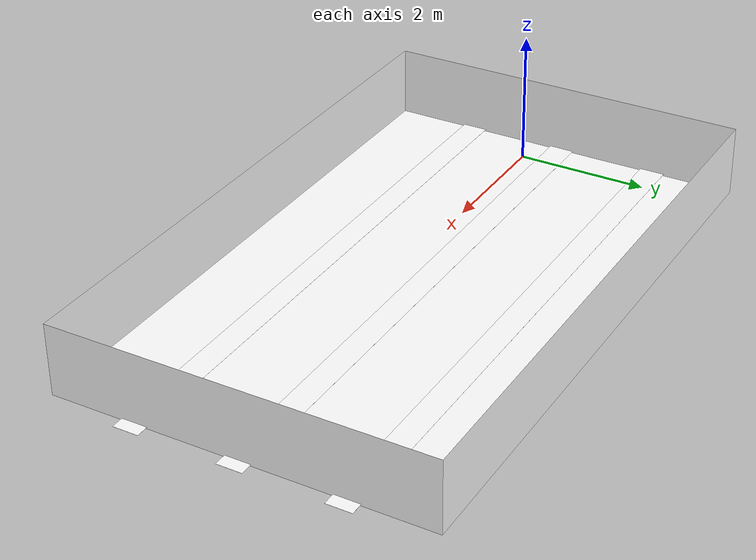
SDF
<sdf version="1.6">
 <world name="bluerov2_pool_sim">
  <magnetic_field>1.99873e-5 2.05993e-5 4.9839e-6</magnetic_field>
  <spherical_coordinates>
   <surface_model>EARTH_WGS84</surface_model>
   <latitude_deg>42.2154</latitude_deg>
   <longitude_deg>-71.0618</longitude_deg>
   <elevation>10.0</elevation>
   <heading_deg>0</heading_deg>
  </spherical_coordinates>
  <plugin filename="gz-sim-physics-system" name="gz::sim::systems::Physics"/>
  <plugin filename="gz-sim-user-commands-system" name="gz::sim::systems::UserCommands"/>
  <plugin filename="gz-sim-scene-broadcaster-system" name="gz::sim::systems::SceneBroadcaster"/>
  <plugin filename="gz-sim-sensors-system" name="gz::sim::v8::systems::Sensors">
   <render_engine>ogre2</render_engine>
  </plugin>
  <plugin filename="libgz-sim-imu-system.so" name="gz::sim::systems::Imu"/>
  <plugin filename="libgz-sim-magnetometer-system.so" name="gz::sim::systems::Magnetometer"/>
  <plugin filename="PressureSensorSystem" name="custom::PressureSensorSystem"/>
  <plugin filename="gz-sim-buoyancy-system" name="gz::sim::systems::Buoyancy">
   <graded_buoyancy>
    <default_density>1000</default_density>
    <density_change><above_depth>0</above_depth><density>1</density></density_change>
   </graded_buoyancy>
   <enable>rov1</enable>
   <enable>rov2</enable>
  </plugin>
  <include><uri>https://fuel.gazebosim.org/1.0/OpenRobotics/models/Sun</uri></include>
  <include><uri>model://pool_map</uri><pose>15 0 -0.3 0 0 0</pose></include>
 </world>
</sdf>

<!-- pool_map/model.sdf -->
<sdf version="1.8">
  <model name="pool">
    <static>true</static>
    <link name="testlink">
      <visual name="Cube">
        <cast_shadows>true</cast_shadows>
        <geometry>
          <mesh>
            <uri>model.dae</uri>
            <submesh>
              <name>Cube</name>
            </submesh>
          </mesh>
        </geometry>
        <material>
          <diffuse>1.0 1.0 1.0 1.0</diffuse>
          <specular>0.0 0.0 0.0 1.0</specular>
          <pbr>
            <metal>
              <albedo_map>blenderkit.jpg</albedo_map>
              <roughness>0.9</roughness>
              <metalness>0.01</metalness>
            </metal>
          </pbr>
        </material>
      </visual>

      <visual name='lane0'>
        <pose>-12 1.5 -0.37 0 0 0</pose>
        <cast_shadows>true</cast_shadows>
        <geometry>
          <box>
          <size>10 0.4 0.001</size>
          </box>
        </geometry>
        <material>
          <ambient>1 1 1 1</ambient>
          <diffuse>1 1 1 1</diffuse>
          <specular>0.1 0.1 0.1 1</specular>
          <pbr>
            <metal>
              <albedo_map>Black.png</albedo_map>
              <normal_map>Black.png</normal_map>
              <roughness>0.9</roughness>
              <metalness>0.01</metalness>
            </metal>
          </pbr>
        </material>
      </visual>

      <visual name='lane1'>
        <pose>-12 -0.1 -0.37 0 0 0</pose>
        <cast_shadows>true</cast_shadows>
        <geometry>
          <box>
          <size>10 0.4 0.001</size>
          </box>
        </geometry>
        <material>
          <ambient>1 1 1 1</ambient>
          <diffuse>1 1 1 1</diffuse>
          <specular>0.1 0.1 0.1 1</specular>
          <pbr>
            <metal>
              <albedo_map>Black.png</albedo_map>
              <normal_map>Black.png</normal_map>
              <roughness>0.9</roughness>
              <metalness>0.01</metalness>
            </metal>
          </pbr>
        </material>
      </visual>

      <visual name='lane2'>
        <pose>-12 -1.7 -0.37 0 0 0</pose>
        <cast_shadows>true</cast_shadows>
        <geometry>
          <box>
          <size>10 0.4 0.001</size>
          </box>
        </geometry>
        <material>
          <ambient>1 1 1 1</ambient>
          <diffuse>1 1 1 1</diffuse>
          <specular>0.1 0.1 0.1 1</specular>
          <pbr>
            <metal>
              <albedo_map>Black.png</albedo_map>
              <normal_map>Black.png</normal_map>
              <roughness>0.9</roughness>
              <metalness>0.01</metalness>
            </metal>
          </pbr>
        </material>
      </visual>

      <light name="Light" type="point">
        <diffuse>1.0 1.0 1.0 1.0</diffuse>
        <attenuation>
          <range>40.0</range>
          <linear>0.0</linear>
          <quadratic>0.0</quadratic>
          <constant>0.0</constant>
        </attenuation>
        <cast_shadows>true</cast_shadows>
        <intensity>1.0</intensity>
      </light>
      <collision name="collision">
        <pose>0 0 0 0 0 0</pose>
        <geometry>
          <mesh>

            <uri>model.dae</uri>
          </mesh>
        </geometry>
        <surface>
          <contact>
            <collide_bitmask>0x01</collide_bitmask>
          </contact>
        </surface>
      </collision>
    </link>
  </model>
</sdf>
